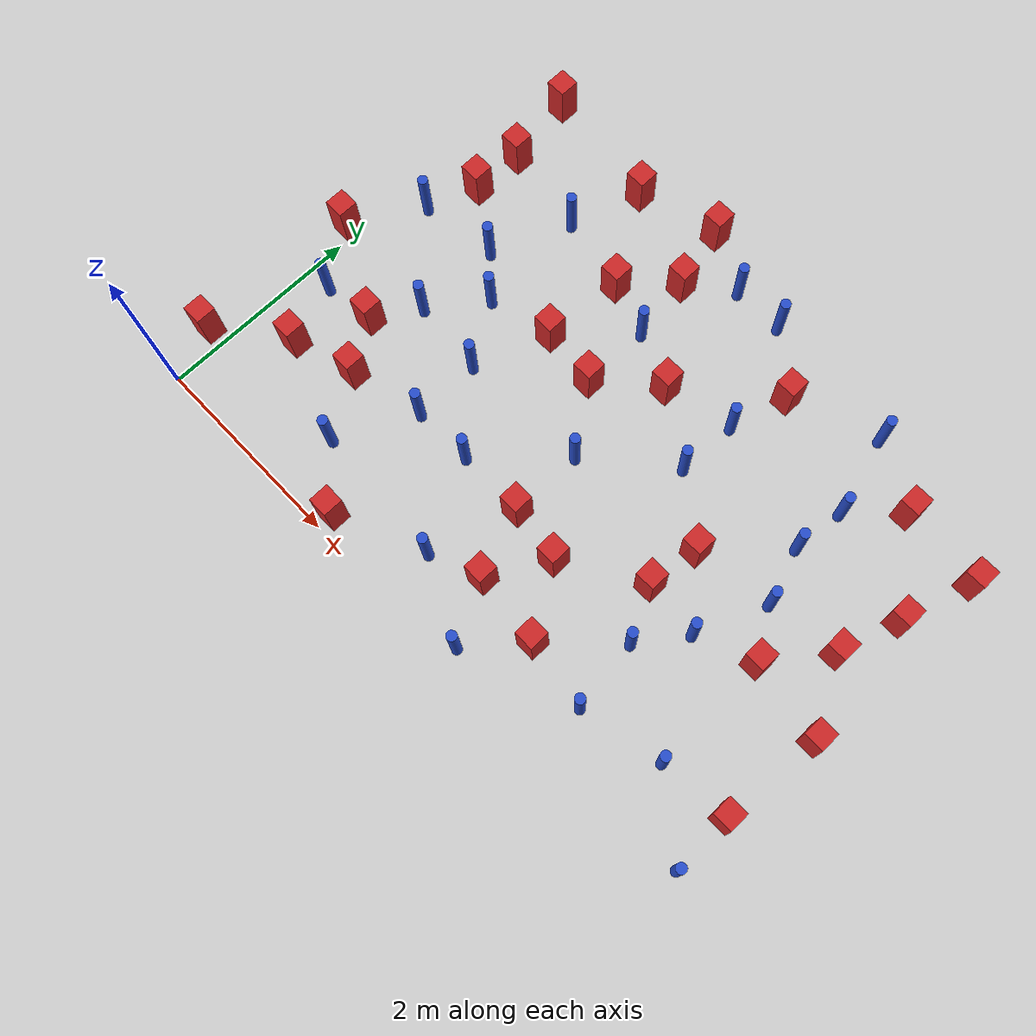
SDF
<sdf version="1.6">
 <model name="dense_57">
  <model name="pole_obstacle1">
   <static>true</static>
   <pose>4.70910394843 1.24014191663 2.88873142074e-08 -9.90536689445e-09 4.60219948999e-07 -1.20965994956e-07</pose>
   <link name="link">
    <pose>0 0 0.3 0 -0 0</pose>
    <inertial>
     <mass>1</mass>
     <inertia><ixx>0.145833</ixx><ixy>0</ixy><ixz>0</ixz><iyy>0.145833</iyy><iyz>0</iyz><izz>0.125</izz></inertia>
    </inertial>
    <collision name="collision">
     <geometry><cylinder><radius>0.05</radius><length>.6</length></cylinder></geometry>
    </collision>
    <visual name="visual">
     <geometry><cylinder><radius>0.05</radius><length>.6</length></cylinder></geometry>
     <material>
      <script><name>Gazebo/Blue</name><uri>file://media/materials/scripts/gazebo.material</uri></script>
     </material>
    </visual>
   </link>
  </model>
  <model name="pole_obstacle4">
   <static>true</static>
   <pose>1.47778483085 2.62779666062 2.88873142074e-08 -9.90536689791e-09 4.6021994899e-07 -1.20965994959e-07</pose>
   <link name="link">
    <pose>0 0 0.3 0 -0 0</pose>
    <inertial>
     <mass>1</mass>
     <inertia><ixx>0.145833</ixx><ixy>0</ixy><ixz>0</ixz><iyy>0.145833</iyy><iyz>0</iyz><izz>0.125</izz></inertia>
    </inertial>
    <collision name="collision">
     <geometry><cylinder><radius>0.05</radius><length>.6</length></cylinder></geometry>
    </collision>
    <visual name="visual">
     <geometry><cylinder><radius>0.05</radius><length>.6</length></cylinder></geometry>
     <material>
      <script><name>Gazebo/Blue</name><uri>file://media/materials/scripts/gazebo.material</uri></script>
     </material>
    </visual>
   </link>
  </model>
  <model name="pole_obstacle7">
   <static>true</static>
   <pose>1.85947096066 1.37539737807 2.88873142074e-08 -9.90536689672e-09 4.60219948993e-07 -1.20965994959e-07</pose>
   <link name="link">
    <pose>0 0 0.3 0 -0 0</pose>
    <inertial>
     <mass>1</mass>
     <inertia><ixx>0.145833</ixx><ixy>0</ixy><ixz>0</ixz><iyy>0.145833</iyy><iyz>0</iyz><izz>0.125</izz></inertia>
    </inertial>
    <collision name="collision">
     <geometry><cylinder><radius>0.05</radius><length>.6</length></cylinder></geometry>
    </collision>
    <visual name="visual">
     <geometry><cylinder><radius>0.05</radius><length>.6</length></cylinder></geometry>
     <material>
      <script><name>Gazebo/Blue</name><uri>file://media/materials/scripts/gazebo.material</uri></script>
     </material>
    </visual>
   </link>
  </model>
  <model name="square_post_obstacle16">
   <static>true</static>
   <pose>0.509750937126 1.03052327592 8.22691968438e-08 7.2212513382e-06 -7.54495500217e-07 2.29674213826e-05</pose>
   <link name="link">
    <pose>0 0 0.25 0 -0 0</pose>
    <inertial>
     <mass>100</mass>
     <inertia>
      <ixx>0.166667</ixx>
      <ixy>0</ixy>
      <ixz>0</ixz>
      <iyy>0.166667</iyy>
      <iyz>0</iyz>
      <izz>0.166667</izz>
     </inertia>
    </inertial>
    <collision name="collision"><geometry><box><size>.2 .2 .5</size></box></geometry></collision>
    <visual name="visual">
     <geometry><box><size>.2 .2 .5</size></box></geometry>
     <material>
      <script><name>Gazebo/Red</name><uri>file://media/materials/scripts/gazebo.material</uri></script>
     </material>
    </visual>
   </link>
  </model>
  <model name="square_post_obstacle20">
   <static>true</static>
   <pose>5.60389424884 3.84199440956 8.22691968438e-08 7.2212513382e-06 -7.54495500217e-07 2.29674213826e-05</pose>
   <link name="link">
    <pose>0 0 0.25 0 -0 0</pose>
    <inertial>
     <mass>100</mass>
     <inertia>
      <ixx>0.166667</ixx>
      <ixy>0</ixy>
      <ixz>0</ixz>
      <iyy>0.166667</iyy>
      <iyz>0</iyz>
      <izz>0.166667</izz>
     </inertia>
    </inertial>
    <collision name="collision"><geometry><box><size>.2 .2 .5</size></box></geometry></collision>
    <visual name="visual">
     <geometry><box><size>.2 .2 .5</size></box></geometry>
     <material>
      <script><name>Gazebo/Red</name><uri>file://media/materials/scripts/gazebo.material</uri></script>
     </material>
    </visual>
   </link>
  </model>
  <model name="pole_obstacle15">
   <static>true</static>
   <pose>1.48284990694 0.625660362326 2.88873142074e-08 -9.90536689692e-09 4.60219948993e-07 -1.20965994958e-07</pose>
   <link name="link">
    <pose>0 0 0.3 0 -0 0</pose>
    <inertial>
     <mass>1</mass>
     <inertia><ixx>0.145833</ixx><ixy>0</ixy><ixz>0</ixz><iyy>0.145833</iyy><iyz>0</iyz><izz>0.125</izz></inertia>
    </inertial>
    <collision name="collision">
     <geometry><cylinder><radius>0.05</radius><length>.6</length></cylinder></geometry>
    </collision>
    <visual name="visual">
     <geometry><cylinder><radius>0.05</radius><length>.6</length></cylinder></geometry>
     <material>
      <script><name>Gazebo/Blue</name><uri>file://media/materials/scripts/gazebo.material</uri></script>
     </material>
    </visual>
   </link>
  </model>
  <model name="square_post_obstacle23">
   <static>true</static>
   <pose>3.39282739825 0.729039512999 8.22691968438e-08 7.2212513382e-06 -7.54495500217e-07 2.29674213826e-05</pose>
   <link name="link">
    <pose>0 0 0.25 0 -0 0</pose>
    <inertial>
     <mass>100</mass>
     <inertia>
      <ixx>0.166667</ixx>
      <ixy>0</ixy>
      <ixz>0</ixz>
      <iyy>0.166667</iyy>
      <iyz>0</iyz>
      <izz>0.166667</izz>
     </inertia>
    </inertial>
    <collision name="collision"><geometry><box><size>.2 .2 .5</size></box></geometry></collision>
    <visual name="visual">
     <geometry><box><size>.2 .2 .5</size></box></geometry>
     <material>
      <script><name>Gazebo/Red</name><uri>file://media/materials/scripts/gazebo.material</uri></script>
     </material>
    </visual>
   </link>
  </model>
  <model name="pole_obstacle18">
   <static>true</static>
   <pose>3.91504674664 2.71842902857 2.88873142074e-08 -9.90536690232e-09 4.6021994898e-07 -1.20965994968e-07</pose>
   <link name="link">
    <pose>0 0 0.3 0 -0 0</pose>
    <inertial>
     <mass>1</mass>
     <inertia><ixx>0.145833</ixx><ixy>0</ixy><ixz>0</ixz><iyy>0.145833</iyy><iyz>0</iyz><izz>0.125</izz></inertia>
    </inertial>
    <collision name="collision">
     <geometry><cylinder><radius>0.05</radius><length>.6</length></cylinder></geometry>
    </collision>
    <visual name="visual">
     <geometry><cylinder><radius>0.05</radius><length>.6</length></cylinder></geometry>
     <material>
      <script><name>Gazebo/Blue</name><uri>file://media/materials/scripts/gazebo.material</uri></script>
     </material>
    </visual>
   </link>
  </model>
  <model name="pole_obstacle29">
   <static>true</static>
   <pose>1.42257281019 3.7378100286 2.88873142074e-08 -9.90536689791e-09 4.6021994899e-07 -1.20965994959e-07</pose>
   <link name="link">
    <pose>0 0 0.3 0 -0 0</pose>
    <inertial>
     <mass>1</mass>
     <inertia><ixx>0.145833</ixx><ixy>0</ixy><ixz>0</ixz><iyy>0.145833</iyy><iyz>0</iyz><izz>0.125</izz></inertia>
    </inertial>
    <collision name="collision">
     <geometry><cylinder><radius>0.05</radius><length>.6</length></cylinder></geometry>
    </collision>
    <visual name="visual">
     <geometry><cylinder><radius>0.05</radius><length>.6</length></cylinder></geometry>
     <material>
      <script><name>Gazebo/Blue</name><uri>file://media/materials/scripts/gazebo.material</uri></script>
     </material>
    </visual>
   </link>
  </model>
  <model name="pole_obstacle44">
   <static>true</static>
   <pose>4.97521513268 4.19667120968 2.88873142074e-08 -9.90536690842e-09 4.60219948965e-07 -1.20965994976e-07</pose>
   <link name="link">
    <pose>0 0 0.3 0 -0 0</pose>
    <inertial>
     <mass>1</mass>
     <inertia><ixx>0.145833</ixx><ixy>0</ixy><ixz>0</ixz><iyy>0.145833</iyy><iyz>0</iyz><izz>0.125</izz></inertia>
    </inertial>
    <collision name="collision">
     <geometry><cylinder><radius>0.05</radius><length>.6</length></cylinder></geometry>
    </collision>
    <visual name="visual">
     <geometry><cylinder><radius>0.05</radius><length>.6</length></cylinder></geometry>
     <material>
      <script><name>Gazebo/Blue</name><uri>file://media/materials/scripts/gazebo.material</uri></script>
     </material>
    </visual>
   </link>
  </model>
  <model name="pole_obstacle50">
   <static>true</static>
   <pose>3.68099340897 0.142534082404 2.88873142074e-08 -9.90536689314e-09 4.60219949002e-07 -1.20965994953e-07</pose>
   <link name="link">
    <pose>0 0 0.3 0 -0 0</pose>
    <inertial>
     <mass>1</mass>
     <inertia><ixx>0.145833</ixx><ixy>0</ixy><ixz>0</ixz><iyy>0.145833</iyy><iyz>0</iyz><izz>0.125</izz></inertia>
    </inertial>
    <collision name="collision">
     <geometry><cylinder><radius>0.05</radius><length>.6</length></cylinder></geometry>
    </collision>
    <visual name="visual">
     <geometry><cylinder><radius>0.05</radius><length>.6</length></cylinder></geometry>
     <material>
      <script><name>Gazebo/Blue</name><uri>file://media/materials/scripts/gazebo.material</uri></script>
     </material>
    </visual>
   </link>
  </model>
  <model name="square_post_obstacle51">
   <static>true</static>
   <pose>0.531060333218 3.87445394791 8.22691968438e-08 7.2212513382e-06 -7.54495500217e-07 2.29674213826e-05</pose>
   <link name="link">
    <pose>0 0 0.25 0 -0 0</pose>
    <inertial>
     <mass>100</mass>
     <inertia>
      <ixx>0.166667</ixx>
      <ixy>0</ixy>
      <ixz>0</ixz>
      <iyy>0.166667</iyy>
      <iyz>0</iyz>
      <izz>0.166667</izz>
     </inertia>
    </inertial>
    <collision name="collision"><geometry><box><size>.2 .2 .5</size></box></geometry></collision>
    <visual name="visual">
     <geometry><box><size>.2 .2 .5</size></box></geometry>
     <material>
      <script><name>Gazebo/Red</name><uri>file://media/materials/scripts/gazebo.material</uri></script>
     </material>
    </visual>
   </link>
  </model>
  <model name="pole_obstacle57">
   <static>true</static>
   <pose>5.18897466718 3.41056651322 2.88873142074e-08 -9.90536690245e-09 4.6021994898e-07 -1.20965994966e-07</pose>
   <link name="link">
    <pose>0 0 0.3 0 -0 0</pose>
    <inertial>
     <mass>1</mass>
     <inertia><ixx>0.145833</ixx><ixy>0</ixy><ixz>0</ixz><iyy>0.145833</iyy><iyz>0</iyz><izz>0.125</izz></inertia>
    </inertial>
    <collision name="collision">
     <geometry><cylinder><radius>0.05</radius><length>.6</length></cylinder></geometry>
    </collision>
    <visual name="visual">
     <geometry><cylinder><radius>0.05</radius><length>.6</length></cylinder></geometry>
     <material>
      <script><name>Gazebo/Blue</name><uri>file://media/materials/scripts/gazebo.material</uri></script>
     </material>
    </visual>
   </link>
  </model>
  <model name="square_post_obstacle62">
   <static>true</static>
   <pose>4.10886648462 0.646720444745 8.22691968438e-08 7.2212513382e-06 -7.54495500217e-07 2.29674213826e-05</pose>
   <link name="link">
    <pose>0 0 0.25 0 -0 0</pose>
    <inertial>
     <mass>100</mass>
     <inertia>
      <ixx>0.166667</ixx>
      <ixy>0</ixy>
      <ixz>0</ixz>
      <iyy>0.166667</iyy>
      <iyz>0</iyz>
      <izz>0.166667</izz>
     </inertia>
    </inertial>
    <collision name="collision"><geometry><box><size>.2 .2 .5</size></box></geometry></collision>
    <visual name="visual">
     <geometry><box><size>.2 .2 .5</size></box></geometry>
     <material>
      <script><name>Gazebo/Red</name><uri>file://media/materials/scripts/gazebo.material</uri></script>
     </material>
    </visual>
   </link>
  </model>
  <model name="square_post_obstacle71">
   <static>true</static>
   <pose>-0.167254333576 0.543579099523 8.22691968438e-08 7.22125133819e-06 -7.54495500217e-07 2.29674213826e-05</pose>
   <link name="link">
    <pose>0 0 0.25 0 -0 0</pose>
    <inertial>
     <mass>100</mass>
     <inertia>
      <ixx>0.166667</ixx>
      <ixy>0</ixy>
      <ixz>0</ixz>
      <iyy>0.166667</iyy>
      <iyz>0</iyz>
      <izz>0.166667</izz>
     </inertia>
    </inertial>
    <collision name="collision"><geometry><box><size>.2 .2 .5</size></box></geometry></collision>
    <visual name="visual">
     <geometry><box><size>.2 .2 .5</size></box></geometry>
     <material>
      <script><name>Gazebo/Red</name><uri>file://media/materials/scripts/gazebo.material</uri></script>
     </material>
    </visual>
   </link>
  </model>
  <model name="pole_obstacle69">
   <static>true</static>
   <pose>3.05030731952 4.3581204059 2.88873142074e-08 -9.90536689859e-09 4.60219948989e-07 -1.20965994961e-07</pose>
   <link name="link">
    <pose>0 0 0.3 0 -0 0</pose>
    <inertial>
     <mass>1</mass>
     <inertia><ixx>0.145833</ixx><ixy>0</ixy><ixz>0</ixz><iyy>0.145833</iyy><iyz>0</iyz><izz>0.125</izz></inertia>
    </inertial>
    <collision name="collision">
     <geometry><cylinder><radius>0.05</radius><length>.6</length></cylinder></geometry>
    </collision>
    <visual name="visual">
     <geometry><cylinder><radius>0.05</radius><length>.6</length></cylinder></geometry>
     <material>
      <script><name>Gazebo/Blue</name><uri>file://media/materials/scripts/gazebo.material</uri></script>
     </material>
    </visual>
   </link>
  </model>
  <model name="pole_obstacle82">
   <static>true</static>
   <pose>2.88810577523 0.532815918404 2.88873142074e-08 -9.90536689404e-09 4.60219949e-07 -1.20965994955e-07</pose>
   <link name="link">
    <pose>0 0 0.3 0 -0 0</pose>
    <inertial>
     <mass>1</mass>
     <inertia><ixx>0.145833</ixx><ixy>0</ixy><ixz>0</ixz><iyy>0.145833</iyy><iyz>0</iyz><izz>0.125</izz></inertia>
    </inertial>
    <collision name="collision">
     <geometry><cylinder><radius>0.05</radius><length>.6</length></cylinder></geometry>
    </collision>
    <visual name="visual">
     <geometry><cylinder><radius>0.05</radius><length>.6</length></cylinder></geometry>
     <material>
      <script><name>Gazebo/Blue</name><uri>file://media/materials/scripts/gazebo.material</uri></script>
     </material>
    </visual>
   </link>
  </model>
  <model name="pole_obstacle83">
   <static>true</static>
   <pose>1.84749083711 2.039909047 2.88873142074e-08 -9.9053669019e-09 4.60219948981e-07 -1.20965994965e-07</pose>
   <link name="link">
    <pose>0 0 0.3 0 -0 0</pose>
    <inertial>
     <mass>1</mass>
     <inertia><ixx>0.145833</ixx><ixy>0</ixy><ixz>0</ixz><iyy>0.145833</iyy><iyz>0</iyz><izz>0.125</izz></inertia>
    </inertial>
    <collision name="collision">
     <geometry><cylinder><radius>0.05</radius><length>.6</length></cylinder></geometry>
    </collision>
    <visual name="visual">
     <geometry><cylinder><radius>0.05</radius><length>.6</length></cylinder></geometry>
     <material>
      <script><name>Gazebo/Blue</name><uri>file://media/materials/scripts/gazebo.material</uri></script>
     </material>
    </visual>
   </link>
  </model>
  <model name="pole_obstacle85">
   <static>true</static>
   <pose>2.46209064445 1.38160981831 2.88873142074e-08 -9.90536689395e-09 4.60219949e-07 -1.20965994953e-07</pose>
   <link name="link">
    <pose>0 0 0.3 0 -0 0</pose>
    <inertial>
     <mass>1</mass>
     <inertia><ixx>0.145833</ixx><ixy>0</ixy><ixz>0</ixz><iyy>0.145833</iyy><iyz>0</iyz><izz>0.125</izz></inertia>
    </inertial>
    <collision name="collision">
     <geometry><cylinder><radius>0.05</radius><length>.6</length></cylinder></geometry>
    </collision>
    <visual name="visual">
     <geometry><cylinder><radius>0.05</radius><length>.6</length></cylinder></geometry>
     <material>
      <script><name>Gazebo/Blue</name><uri>file://media/materials/scripts/gazebo.material</uri></script>
     </material>
    </visual>
   </link>
  </model>
  <model name="pole_obstacle86">
   <static>true</static>
   <pose>4.79495675127 0.54372738592 2.88873142074e-08 -9.90536689326e-09 4.60219949001e-07 -1.20965994954e-07</pose>
   <link name="link">
    <pose>0 0 0.3 0 -0 0</pose>
    <inertial>
     <mass>1</mass>
     <inertia><ixx>0.145833</ixx><ixy>0</ixy><ixz>0</ixz><iyy>0.145833</iyy><iyz>0</iyz><izz>0.125</izz></inertia>
    </inertial>
    <collision name="collision">
     <geometry><cylinder><radius>0.05</radius><length>.6</length></cylinder></geometry>
    </collision>
    <visual name="visual">
     <geometry><cylinder><radius>0.05</radius><length>.6</length></cylinder></geometry>
     <material>
      <script><name>Gazebo/Blue</name><uri>file://media/materials/scripts/gazebo.material</uri></script>
     </material>
    </visual>
   </link>
  </model>
  <model name="pole_obstacle88">
   <static>true</static>
   <pose>3.93982172109 3.31167060398 2.88873142074e-08 -9.90536690232e-09 4.6021994898e-07 -1.20965994968e-07</pose>
   <link name="link">
    <pose>0 0 0.3 0 -0 0</pose>
    <inertial>
     <mass>1</mass>
     <inertia><ixx>0.145833</ixx><ixy>0</ixy><ixz>0</ixz><iyy>0.145833</iyy><iyz>0</iyz><izz>0.125</izz></inertia>
    </inertial>
    <collision name="collision">
     <geometry><cylinder><radius>0.05</radius><length>.6</length></cylinder></geometry>
    </collision>
    <visual name="visual">
     <geometry><cylinder><radius>0.05</radius><length>.6</length></cylinder></geometry>
     <material>
      <script><name>Gazebo/Blue</name><uri>file://media/materials/scripts/gazebo.material</uri></script>
     </material>
    </visual>
   </link>
  </model>
  <model name="pole_obstacle93">
   <static>true</static>
   <pose>5.02648648349 1.67899417795 2.88873142074e-08 -9.90536689445e-09 4.60219948999e-07 -1.20965994956e-07</pose>
   <link name="link">
    <pose>0 0 0.3 0 -0 0</pose>
    <inertial>
     <mass>1</mass>
     <inertia><ixx>0.145833</ixx><ixy>0</ixy><ixz>0</ixz><iyy>0.145833</iyy><iyz>0</iyz><izz>0.125</izz></inertia>
    </inertial>
    <collision name="collision">
     <geometry><cylinder><radius>0.05</radius><length>.6</length></cylinder></geometry>
    </collision>
    <visual name="visual">
     <geometry><cylinder><radius>0.05</radius><length>.6</length></cylinder></geometry>
     <material>
      <script><name>Gazebo/Blue</name><uri>file://media/materials/scripts/gazebo.material</uri></script>
     </material>
    </visual>
   </link>
  </model>
  <model name="square_post_obstacle86">
   <static>true</static>
   <pose>2.70845389974 2.7022897072 8.22691968438e-08 7.2212513382e-06 -7.54495500217e-07 2.29674213826e-05</pose>
   <link name="link">
    <pose>0 0 0.25 0 -0 0</pose>
    <inertial>
     <mass>100</mass>
     <inertia>
      <ixx>0.166667</ixx>
      <ixy>0</ixy>
      <ixz>0</ixz>
      <iyy>0.166667</iyy>
      <iyz>0</iyz>
      <izz>0.166667</izz>
     </inertia>
    </inertial>
    <collision name="collision"><geometry><box><size>.2 .2 .5</size></box></geometry></collision>
    <visual name="visual">
     <geometry><box><size>.2 .2 .5</size></box></geometry>
     <material>
      <script><name>Gazebo/Red</name><uri>file://media/materials/scripts/gazebo.material</uri></script>
     </material>
    </visual>
   </link>
  </model>
  <model name="square_post_obstacle87">
   <static>true</static>
   <pose>1.66176385393 4.43725755081 8.22691968438e-08 7.2212513382e-06 -7.54495500217e-07 2.29674213826e-05</pose>
   <link name="link">
    <pose>0 0 0.25 0 -0 0</pose>
    <inertial>
     <mass>100</mass>
     <inertia>
      <ixx>0.166667</ixx>
      <ixy>0</ixy>
      <ixz>0</ixz>
      <iyy>0.166667</iyy>
      <iyz>0</iyz>
      <izz>0.166667</izz>
     </inertia>
    </inertial>
    <collision name="collision"><geometry><box><size>.2 .2 .5</size></box></geometry></collision>
    <visual name="visual">
     <geometry><box><size>.2 .2 .5</size></box></geometry>
     <material>
      <script><name>Gazebo/Red</name><uri>file://media/materials/scripts/gazebo.material</uri></script>
     </material>
    </visual>
   </link>
  </model>
  <model name="pole_obstacle97">
   <static>true</static>
   <pose>5.13372845619 2.89532559758 2.88873142074e-08 -9.90536690245e-09 4.6021994898e-07 -1.20965994966e-07</pose>
   <link name="link">
    <pose>0 0 0.3 0 -0 0</pose>
    <inertial>
     <mass>1</mass>
     <inertia><ixx>0.145833</ixx><ixy>0</ixy><ixz>0</ixz><iyy>0.145833</iyy><iyz>0</iyz><izz>0.125</izz></inertia>
    </inertial>
    <collision name="collision">
     <geometry><cylinder><radius>0.05</radius><length>.6</length></cylinder></geometry>
    </collision>
    <visual name="visual">
     <geometry><cylinder><radius>0.05</radius><length>.6</length></cylinder></geometry>
     <material>
      <script><name>Gazebo/Blue</name><uri>file://media/materials/scripts/gazebo.material</uri></script>
     </material>
    </visual>
   </link>
  </model>
  <model name="pole_obstacle109">
   <static>true</static>
   <pose>1.09319935428 2.10861999602 2.88873142074e-08 -9.90536689791e-09 4.6021994899e-07 -1.20965994959e-07</pose>
   <link name="link">
    <pose>0 0 0.3 0 -0 0</pose>
    <inertial>
     <mass>1</mass>
     <inertia><ixx>0.145833</ixx><ixy>0</ixy><ixz>0</ixz><iyy>0.145833</iyy><iyz>0</iyz><izz>0.125</izz></inertia>
    </inertial>
    <collision name="collision">
     <geometry><cylinder><radius>0.05</radius><length>.6</length></cylinder></geometry>
    </collision>
    <visual name="visual">
     <geometry><cylinder><radius>0.05</radius><length>.6</length></cylinder></geometry>
     <material>
      <script><name>Gazebo/Blue</name><uri>file://media/materials/scripts/gazebo.material</uri></script>
     </material>
    </visual>
   </link>
  </model>
  <model name="square_post_obstacle100">
   <static>true</static>
   <pose>5.58198037593 1.89903868807 8.22691968438e-08 7.2212513382e-06 -7.54495500217e-07 2.29674213826e-05</pose>
   <link name="link">
    <pose>0 0 0.25 0 -0 0</pose>
    <inertial>
     <mass>100</mass>
     <inertia>
      <ixx>0.166667</ixx>
      <ixy>0</ixy>
      <ixz>0</ixz>
      <iyy>0.166667</iyy>
      <iyz>0</iyz>
      <izz>0.166667</izz>
     </inertia>
    </inertial>
    <collision name="collision"><geometry><box><size>.2 .2 .5</size></box></geometry></collision>
    <visual name="visual">
     <geometry><box><size>.2 .2 .5</size></box></geometry>
     <material>
      <script><name>Gazebo/Red</name><uri>file://media/materials/scripts/gazebo.material</uri></script>
     </material>
    </visual>
   </link>
  </model>
  <model name="square_post_obstacle101">
   <static>true</static>
   <pose>6.4160098529 3.75522987881 8.22691968438e-08 7.2212513382e-06 -7.54495500217e-07 2.29674213826e-05</pose>
   <link name="link">
    <pose>0 0 0.25 0 -0 0</pose>
    <inertial>
     <mass>100</mass>
     <inertia>
      <ixx>0.166667</ixx>
      <ixy>0</ixy>
      <ixz>0</ixz>
      <iyy>0.166667</iyy>
      <iyz>0</iyz>
      <izz>0.166667</izz>
     </inertia>
    </inertial>
    <collision name="collision"><geometry><box><size>.2 .2 .5</size></box></geometry></collision>
    <visual name="visual">
     <geometry><box><size>.2 .2 .5</size></box></geometry>
     <material>
      <script><name>Gazebo/Red</name><uri>file://media/materials/scripts/gazebo.material</uri></script>
     </material>
    </visual>
   </link>
  </model>
  <model name="square_post_obstacle110">
   <static>true</static>
   <pose>3.25560990237 3.15832452246 8.22691968438e-08 7.2212513382e-06 -7.54495500217e-07 2.29674213826e-05</pose>
   <link name="link">
    <pose>0 0 0.25 0 -0 0</pose>
    <inertial>
     <mass>100</mass>
     <inertia>
      <ixx>0.166667</ixx>
      <ixy>0</ixy>
      <ixz>0</ixz>
      <iyy>0.166667</iyy>
      <iyz>0</iyz>
      <izz>0.166667</izz>
     </inertia>
    </inertial>
    <collision name="collision"><geometry><box><size>.2 .2 .5</size></box></geometry></collision>
    <visual name="visual">
     <geometry><box><size>.2 .2 .5</size></box></geometry>
     <material>
      <script><name>Gazebo/Red</name><uri>file://media/materials/scripts/gazebo.material</uri></script>
     </material>
    </visual>
   </link>
  </model>
  <model name="pole_obstacle121">
   <static>true</static>
   <pose>5.60468850741 0.715431302196 2.88873142074e-08 -9.90536689837e-09 4.60219948989e-07 -1.2096599496e-07</pose>
   <link name="link">
    <pose>0 0 0.3 0 -0 0</pose>
    <inertial>
     <mass>1</mass>
     <inertia><ixx>0.145833</ixx><ixy>0</ixy><ixz>0</ixz><iyy>0.145833</iyy><iyz>0</iyz><izz>0.125</izz></inertia>
    </inertial>
    <collision name="collision">
     <geometry><cylinder><radius>0.05</radius><length>.6</length></cylinder></geometry>
    </collision>
    <visual name="visual">
     <geometry><cylinder><radius>0.05</radius><length>.6</length></cylinder></geometry>
     <material>
      <script><name>Gazebo/Blue</name><uri>file://media/materials/scripts/gazebo.material</uri></script>
     </material>
    </visual>
   </link>
  </model>
  <model name="pole_obstacle125">
   <static>true</static>
   <pose>3.1519315099 2.09421471783 2.88873142074e-08 -9.90536690232e-09 4.6021994898e-07 -1.20965994968e-07</pose>
   <link name="link">
    <pose>0 0 0.3 0 -0 0</pose>
    <inertial>
     <mass>1</mass>
     <inertia><ixx>0.145833</ixx><ixy>0</ixy><ixz>0</ixz><iyy>0.145833</iyy><iyz>0</iyz><izz>0.125</izz></inertia>
    </inertial>
    <collision name="collision">
     <geometry><cylinder><radius>0.05</radius><length>.6</length></cylinder></geometry>
    </collision>
    <visual name="visual">
     <geometry><cylinder><radius>0.05</radius><length>.6</length></cylinder></geometry>
     <material>
      <script><name>Gazebo/Blue</name><uri>file://media/materials/scripts/gazebo.material</uri></script>
     </material>
    </visual>
   </link>
  </model>
  <model name="square_post_obstacle115">
   <static>true</static>
   <pose>6.00321309069 2.45282853837 8.22691968438e-08 7.2212513382e-06 -7.54495500217e-07 2.29674213826e-05</pose>
   <link name="link">
    <pose>0 0 0.25 0 -0 0</pose>
    <inertial>
     <mass>100</mass>
     <inertia>
      <ixx>0.166667</ixx>
      <ixy>0</ixy>
      <ixz>0</ixz>
      <iyy>0.166667</iyy>
      <iyz>0</iyz>
      <izz>0.166667</izz>
     </inertia>
    </inertial>
    <collision name="collision"><geometry><box><size>.2 .2 .5</size></box></geometry></collision>
    <visual name="visual">
     <geometry><box><size>.2 .2 .5</size></box></geometry>
     <material>
      <script><name>Gazebo/Red</name><uri>file://media/materials/scripts/gazebo.material</uri></script>
     </material>
    </visual>
   </link>
  </model>
  <model name="square_post_obstacle128">
   <static>true</static>
   <pose>2.47648640576 4.64615010845 8.22691968438e-08 7.2212513382e-06 -7.54495500217e-07 2.29674213826e-05</pose>
   <link name="link">
    <pose>0 0 0.25 0 -0 0</pose>
    <inertial>
     <mass>100</mass>
     <inertia>
      <ixx>0.166667</ixx>
      <ixy>0</ixy>
      <ixz>0</ixz>
      <iyy>0.166667</iyy>
      <iyz>0</iyz>
      <izz>0.166667</izz>
     </inertia>
    </inertial>
    <collision name="collision"><geometry><box><size>.2 .2 .5</size></box></geometry></collision>
    <visual name="visual">
     <geometry><box><size>.2 .2 .5</size></box></geometry>
     <material>
      <script><name>Gazebo/Red</name><uri>file://media/materials/scripts/gazebo.material</uri></script>
     </material>
    </visual>
   </link>
  </model>
  <model name="square_post_obstacle133">
   <static>true</static>
   <pose>2.13171599648 2.77237591949 8.22691968438e-08 7.2212513382e-06 -7.54495500217e-07 2.29674213826e-05</pose>
   <link name="link">
    <pose>0 0 0.25 0 -0 0</pose>
    <inertial>
     <mass>100</mass>
     <inertia>
      <ixx>0.166667</ixx>
      <ixy>0</ixy>
      <ixz>0</ixz>
      <iyy>0.166667</iyy>
      <iyz>0</iyz>
      <izz>0.166667</izz>
     </inertia>
    </inertial>
    <collision name="collision"><geometry><box><size>.2 .2 .5</size></box></geometry></collision>
    <visual name="visual">
     <geometry><box><size>.2 .2 .5</size></box></geometry>
     <material>
      <script><name>Gazebo/Red</name><uri>file://media/materials/scripts/gazebo.material</uri></script>
     </material>
    </visual>
   </link>
  </model>
  <model name="square_post_obstacle142">
   <static>true</static>
   <pose>0.413356632766 4.60096449332 8.22691968438e-08 7.2212513382e-06 -7.54495500217e-07 2.29674213826e-05</pose>
   <link name="link">
    <pose>0 0 0.25 0 -0 0</pose>
    <inertial>
     <mass>100</mass>
     <inertia>
      <ixx>0.166667</ixx>
      <ixy>0</ixy>
      <ixz>0</ixz>
      <iyy>0.166667</iyy>
      <iyz>0</iyz>
      <izz>0.166667</izz>
     </inertia>
    </inertial>
    <collision name="collision"><geometry><box><size>.2 .2 .5</size></box></geometry></collision>
    <visual name="visual">
     <geometry><box><size>.2 .2 .5</size></box></geometry>
     <material>
      <script><name>Gazebo/Red</name><uri>file://media/materials/scripts/gazebo.material</uri></script>
     </material>
    </visual>
   </link>
  </model>
  <model name="square_post_obstacle144">
   <static>true</static>
   <pose>2.62752429421 4.01897842473 8.22691968438e-08 7.22125133819e-06 -7.54495500217e-07 2.29674213826e-05</pose>
   <link name="link">
    <pose>0 0 0.25 0 -0 0</pose>
    <inertial>
     <mass>100</mass>
     <inertia>
      <ixx>0.166667</ixx>
      <ixy>0</ixy>
      <ixz>0</ixz>
      <iyy>0.166667</iyy>
      <iyz>0</iyz>
      <izz>0.166667</izz>
     </inertia>
    </inertial>
    <collision name="collision"><geometry><box><size>.2 .2 .5</size></box></geometry></collision>
    <visual name="visual">
     <geometry><box><size>.2 .2 .5</size></box></geometry>
     <material>
      <script><name>Gazebo/Red</name><uri>file://media/materials/scripts/gazebo.material</uri></script>
     </material>
    </visual>
   </link>
  </model>
  <model name="square_post_obstacle148">
   <static>true</static>
   <pose>2.02430912068 0.173733210992 8.22691968438e-08 7.2212513382e-06 -7.54495500217e-07 2.29674213826e-05</pose>
   <link name="link">
    <pose>0 0 0.25 0 -0 0</pose>
    <inertial>
     <mass>100</mass>
     <inertia>
      <ixx>0.166667</ixx>
      <ixy>0</ixy>
      <ixz>0</ixz>
      <iyy>0.166667</iyy>
      <iyz>0</iyz>
      <izz>0.166667</izz>
     </inertia>
    </inertial>
    <collision name="collision"><geometry><box><size>.2 .2 .5</size></box></geometry></collision>
    <visual name="visual">
     <geometry><box><size>.2 .2 .5</size></box></geometry>
     <material>
      <script><name>Gazebo/Red</name><uri>file://media/materials/scripts/gazebo.material</uri></script>
     </material>
    </visual>
   </link>
  </model>
  <model name="square_post_obstacle150">
   <static>true</static>
   <pose>6.36851767852 1.76621751565 8.22691968438e-08 7.2212513382e-06 -7.54495500217e-07 2.29674213826e-05</pose>
   <link name="link">
    <pose>0 0 0.25 0 -0 0</pose>
    <inertial>
     <mass>100</mass>
     <inertia>
      <ixx>0.166667</ixx>
      <ixy>0</ixy>
      <ixz>0</ixz>
      <iyy>0.166667</iyy>
      <iyz>0</iyz>
      <izz>0.166667</izz>
     </inertia>
    </inertial>
    <collision name="collision"><geometry><box><size>.2 .2 .5</size></box></geometry></collision>
    <visual name="visual">
     <geometry><box><size>.2 .2 .5</size></box></geometry>
     <material>
      <script><name>Gazebo/Red</name><uri>file://media/materials/scripts/gazebo.material</uri></script>
     </material>
    </visual>
   </link>
  </model>
  <model name="square_post_obstacle160">
   <static>true</static>
   <pose>-0.0887474940083 2.18878850441 8.22691968438e-08 7.22125133819e-06 -7.54495500217e-07 2.29674213826e-05</pose>
   <link name="link">
    <pose>0 0 0.25 0 -0 0</pose>
    <inertial>
     <mass>100</mass>
     <inertia>
      <ixx>0.166667</ixx>
      <ixy>0</ixy>
      <ixz>0</ixz>
      <iyy>0.166667</iyy>
      <iyz>0</iyz>
      <izz>0.166667</izz>
     </inertia>
    </inertial>
    <collision name="collision"><geometry><box><size>.2 .2 .5</size></box></geometry></collision>
    <visual name="visual">
     <geometry><box><size>.2 .2 .5</size></box></geometry>
     <material>
      <script><name>Gazebo/Red</name><uri>file://media/materials/scripts/gazebo.material</uri></script>
     </material>
    </visual>
   </link>
  </model>
  <model name="pole_obstacle168">
   <static>true</static>
   <pose>0.303430598897 1.6145533965 2.88873142074e-08 -9.90536689905e-09 4.60219948988e-07 -1.2096599496e-07</pose>
   <link name="link">
    <pose>0 0 0.3 0 -0 0</pose>
    <inertial>
     <mass>1</mass>
     <inertia><ixx>0.145833</ixx><ixy>0</ixy><ixz>0</ixz><iyy>0.145833</iyy><iyz>0</iyz><izz>0.125</izz></inertia>
    </inertial>
    <collision name="collision">
     <geometry><cylinder><radius>0.05</radius><length>.6</length></cylinder></geometry>
    </collision>
    <visual name="visual">
     <geometry><cylinder><radius>0.05</radius><length>.6</length></cylinder></geometry>
     <material>
      <script><name>Gazebo/Blue</name><uri>file://media/materials/scripts/gazebo.material</uri></script>
     </material>
    </visual>
   </link>
  </model>
  <model name="pole_obstacle169">
   <static>true</static>
   <pose>2.70995373998 3.39726237616 2.88873142074e-08 -9.90536690232e-09 4.6021994898e-07 -1.20965994968e-07</pose>
   <link name="link">
    <pose>0 0 0.3 0 -0 0</pose>
    <inertial>
     <mass>1</mass>
     <inertia><ixx>0.145833</ixx><ixy>0</ixy><ixz>0</ixz><iyy>0.145833</iyy><iyz>0</iyz><izz>0.125</izz></inertia>
    </inertial>
    <collision name="collision">
     <geometry><cylinder><radius>0.05</radius><length>.6</length></cylinder></geometry>
    </collision>
    <visual name="visual">
     <geometry><cylinder><radius>0.05</radius><length>.6</length></cylinder></geometry>
     <material>
      <script><name>Gazebo/Blue</name><uri>file://media/materials/scripts/gazebo.material</uri></script>
     </material>
    </visual>
   </link>
  </model>
  <model name="pole_obstacle175">
   <static>true</static>
   <pose>1.0971287201 2.96953172808 2.88873142074e-08 -9.90536689791e-09 4.6021994899e-07 -1.20965994959e-07</pose>
   <link name="link">
    <pose>0 0 0.3 0 -0 0</pose>
    <inertial>
     <mass>1</mass>
     <inertia><ixx>0.145833</ixx><ixy>0</ixy><ixz>0</ixz><iyy>0.145833</iyy><iyz>0</iyz><izz>0.125</izz></inertia>
    </inertial>
    <collision name="collision">
     <geometry><cylinder><radius>0.05</radius><length>.6</length></cylinder></geometry>
    </collision>
    <visual name="visual">
     <geometry><cylinder><radius>0.05</radius><length>.6</length></cylinder></geometry>
     <material>
      <script><name>Gazebo/Blue</name><uri>file://media/materials/scripts/gazebo.material</uri></script>
     </material>
    </visual>
   </link>
  </model>
  <model name="square_post_obstacle165">
   <static>true</static>
   <pose>3.70641250822 1.28781084 8.22691968438e-08 7.2212513382e-06 -7.54495500217e-07 2.29674213826e-05</pose>
   <link name="link">
    <pose>0 0 0.25 0 -0 0</pose>
    <inertial>
     <mass>100</mass>
     <inertia>
      <ixx>0.166667</ixx>
      <ixy>0</ixy>
      <ixz>0</ixz>
      <iyy>0.166667</iyy>
      <iyz>0</iyz>
      <izz>0.166667</izz>
     </inertia>
    </inertial>
    <collision name="collision"><geometry><box><size>.2 .2 .5</size></box></geometry></collision>
    <visual name="visual">
     <geometry><box><size>.2 .2 .5</size></box></geometry>
     <material>
      <script><name>Gazebo/Red</name><uri>file://media/materials/scripts/gazebo.material</uri></script>
     </material>
    </visual>
   </link>
  </model>
  <model name="pole_obstacle178">
   <static>true</static>
   <pose>5.31190927713 2.35344213634 2.88873142074e-08 -9.90536690245e-09 4.6021994898e-07 -1.20965994966e-07</pose>
   <link name="link">
    <pose>0 0 0.3 0 -0 0</pose>
    <inertial>
     <mass>1</mass>
     <inertia><ixx>0.145833</ixx><ixy>0</ixy><ixz>0</ixz><iyy>0.145833</iyy><iyz>0</iyz><izz>0.125</izz></inertia>
    </inertial>
    <collision name="collision">
     <geometry><cylinder><radius>0.05</radius><length>.6</length></cylinder></geometry>
    </collision>
    <visual name="visual">
     <geometry><cylinder><radius>0.05</radius><length>.6</length></cylinder></geometry>
     <material>
      <script><name>Gazebo/Blue</name><uri>file://media/materials/scripts/gazebo.material</uri></script>
     </material>
    </visual>
   </link>
  </model>
  <model name="square_post_obstacle169">
   <static>true</static>
   <pose>4.52607801896 2.24142619134 8.22691968438e-08 7.2212513382e-06 -7.54495500217e-07 2.29674213826e-05</pose>
   <link name="link">
    <pose>0 0 0.25 0 -0 0</pose>
    <inertial>
     <mass>100</mass>
     <inertia>
      <ixx>0.166667</ixx>
      <ixy>0</ixy>
      <ixz>0</ixz>
      <iyy>0.166667</iyy>
      <iyz>0</iyz>
      <izz>0.166667</izz>
     </inertia>
    </inertial>
    <collision name="collision"><geometry><box><size>.2 .2 .5</size></box></geometry></collision>
    <visual name="visual">
     <geometry><box><size>.2 .2 .5</size></box></geometry>
     <material>
      <script><name>Gazebo/Red</name><uri>file://media/materials/scripts/gazebo.material</uri></script>
     </material>
    </visual>
   </link>
  </model>
  <model name="square_post_obstacle185">
   <static>true</static>
   <pose>0.516034162001 3.36219640676 8.22691968438e-08 7.2212513382e-06 -7.54495500217e-07 2.29674213826e-05</pose>
   <link name="link">
    <pose>0 0 0.25 0 -0 0</pose>
    <inertial>
     <mass>100</mass>
     <inertia>
      <ixx>0.166667</ixx>
      <ixy>0</ixy>
      <ixz>0</ixz>
      <iyy>0.166667</iyy>
      <iyz>0</iyz>
      <izz>0.166667</izz>
     </inertia>
    </inertial>
    <collision name="collision"><geometry><box><size>.2 .2 .5</size></box></geometry></collision>
    <visual name="visual">
     <geometry><box><size>.2 .2 .5</size></box></geometry>
     <material>
      <script><name>Gazebo/Red</name><uri>file://media/materials/scripts/gazebo.material</uri></script>
     </material>
    </visual>
   </link>
  </model>
  <model name="square_post_obstacle191">
   <static>true</static>
   <pose>0.826568687405 1.68189443587 8.22691968438e-08 7.2212513382e-06 -7.54495500217e-07 2.29674213826e-05</pose>
   <link name="link">
    <pose>0 0 0.25 0 -0 0</pose>
    <inertial>
     <mass>100</mass>
     <inertia>
      <ixx>0.166667</ixx>
      <ixy>0</ixy>
      <ixz>0</ixz>
      <iyy>0.166667</iyy>
      <iyz>0</iyz>
      <izz>0.166667</izz>
     </inertia>
    </inertial>
    <collision name="collision"><geometry><box><size>.2 .2 .5</size></box></geometry></collision>
    <visual name="visual">
     <geometry><box><size>.2 .2 .5</size></box></geometry>
     <material>
      <script><name>Gazebo/Red</name><uri>file://media/materials/scripts/gazebo.material</uri></script>
     </material>
    </visual>
   </link>
  </model>
  <model name="square_post_obstacle194">
   <static>true</static>
   <pose>3.15325661246 1.37361826493 8.22691968438e-08 7.2212513382e-06 -7.54495500217e-07 2.29674213826e-05</pose>
   <link name="link">
    <pose>0 0 0.25 0 -0 0</pose>
    <inertial>
     <mass>100</mass>
     <inertia>
      <ixx>0.166667</ixx>
      <ixy>0</ixy>
      <ixz>0</ixz>
      <iyy>0.166667</iyy>
      <iyz>0</iyz>
      <izz>0.166667</izz>
     </inertia>
    </inertial>
    <collision name="collision"><geometry><box><size>.2 .2 .5</size></box></geometry></collision>
    <visual name="visual">
     <geometry><box><size>.2 .2 .5</size></box></geometry>
     <material>
      <script><name>Gazebo/Red</name><uri>file://media/materials/scripts/gazebo.material</uri></script>
     </material>
    </visual>
   </link>
  </model>
  <model name="pole_obstacle192">
   <static>true</static>
   <pose>3.56125488435 4.36119049291 2.88873142074e-08 -9.90536689859e-09 4.60219948989e-07 -1.20965994961e-07</pose>
   <link name="link">
    <pose>0 0 0.3 0 -0 0</pose>
    <inertial>
     <mass>1</mass>
     <inertia><ixx>0.145833</ixx><ixy>0</ixy><ixz>0</ixz><iyy>0.145833</iyy><iyz>0</iyz><izz>0.125</izz></inertia>
    </inertial>
    <collision name="collision">
     <geometry><cylinder><radius>0.05</radius><length>.6</length></cylinder></geometry>
    </collision>
    <visual name="visual">
     <geometry><cylinder><radius>0.05</radius><length>.6</length></cylinder></geometry>
     <material>
      <script><name>Gazebo/Blue</name><uri>file://media/materials/scripts/gazebo.material</uri></script>
     </material>
    </visual>
   </link>
  </model>
  <model name="pole_obstacle198">
   <static>true</static>
   <pose>0.315963025718 2.86845633072 2.88873142074e-08 -9.90536689663e-09 4.60219948993e-07 -1.20965994959e-07</pose>
   <link name="link">
    <pose>0 0 0.3 0 -0 0</pose>
    <inertial>
     <mass>1</mass>
     <inertia><ixx>0.145833</ixx><ixy>0</ixy><ixz>0</ixz><iyy>0.145833</iyy><iyz>0</iyz><izz>0.125</izz></inertia>
    </inertial>
    <collision name="collision">
     <geometry><cylinder><radius>0.05</radius><length>.6</length></cylinder></geometry>
    </collision>
    <visual name="visual">
     <geometry><cylinder><radius>0.05</radius><length>.6</length></cylinder></geometry>
     <material>
      <script><name>Gazebo/Blue</name><uri>file://media/materials/scripts/gazebo.material</uri></script>
     </material>
    </visual>
   </link>
  </model>
  <model name="pole_obstacle211">
   <static>true</static>
   <pose>6.29227926913 0.185579086717 2.88873142074e-08 -9.90536689378e-09 4.60219949e-07 -1.20965994955e-07</pose>
   <link name="link">
    <pose>0 0 0.3 0 -0 0</pose>
    <inertial>
     <mass>1</mass>
     <inertia><ixx>0.145833</ixx><ixy>0</ixy><ixz>0</ixz><iyy>0.145833</iyy><iyz>0</iyz><izz>0.125</izz></inertia>
    </inertial>
    <collision name="collision">
     <geometry><cylinder><radius>0.05</radius><length>.6</length></cylinder></geometry>
    </collision>
    <visual name="visual">
     <geometry><cylinder><radius>0.05</radius><length>.6</length></cylinder></geometry>
     <material>
      <script><name>Gazebo/Blue</name><uri>file://media/materials/scripts/gazebo.material</uri></script>
     </material>
    </visual>
   </link>
  </model>
  <model name="square_post_obstacle204">
   <static>true</static>
   <pose>1.13018322408 1.20956993979 8.22691968438e-08 7.2212513382e-06 -7.54495500217e-07 2.29674213826e-05</pose>
   <link name="link">
    <pose>0 0 0.25 0 -0 0</pose>
    <inertial>
     <mass>100</mass>
     <inertia>
      <ixx>0.166667</ixx>
      <ixy>0</ixy>
      <ixz>0</ixz>
      <iyy>0.166667</iyy>
      <iyz>0</iyz>
      <izz>0.166667</izz>
     </inertia>
    </inertial>
    <collision name="collision"><geometry><box><size>.2 .2 .5</size></box></geometry></collision>
    <visual name="visual">
     <geometry><box><size>.2 .2 .5</size></box></geometry>
     <material>
      <script><name>Gazebo/Red</name><uri>file://media/materials/scripts/gazebo.material</uri></script>
     </material>
    </visual>
   </link>
  </model>
  <model name="square_post_obstacle206">
   <static>true</static>
   <pose>2.19339219277 3.57032923973 8.22691968438e-08 7.2212513382e-06 -7.54495500217e-07 2.29674213826e-05</pose>
   <link name="link">
    <pose>0 0 0.25 0 -0 0</pose>
    <inertial>
     <mass>100</mass>
     <inertia>
      <ixx>0.166667</ixx>
      <ixy>0</ixy>
      <ixz>0</ixz>
      <iyy>0.166667</iyy>
      <iyz>0</iyz>
      <izz>0.166667</izz>
     </inertia>
    </inertial>
    <collision name="collision"><geometry><box><size>.2 .2 .5</size></box></geometry></collision>
    <visual name="visual">
     <geometry><box><size>.2 .2 .5</size></box></geometry>
     <material>
      <script><name>Gazebo/Red</name><uri>file://media/materials/scripts/gazebo.material</uri></script>
     </material>
    </visual>
   </link>
  </model>
  <model name="square_post_obstacle214">
   <static>true</static>
   <pose>4.10452059555 3.88535603357 8.22691968438e-08 7.2212513382e-06 -7.54495500217e-07 2.29674213826e-05</pose>
   <link name="link">
    <pose>0 0 0.25 0 -0 0</pose>
    <inertial>
     <mass>100</mass>
     <inertia>
      <ixx>0.166667</ixx>
      <ixy>0</ixy>
      <ixz>0</ixz>
      <iyy>0.166667</iyy>
      <iyz>0</iyz>
      <izz>0.166667</izz>
     </inertia>
    </inertial>
    <collision name="collision"><geometry><box><size>.2 .2 .5</size></box></geometry></collision>
    <visual name="visual">
     <geometry><box><size>.2 .2 .5</size></box></geometry>
     <material>
      <script><name>Gazebo/Red</name><uri>file://media/materials/scripts/gazebo.material</uri></script>
     </material>
    </visual>
   </link>
  </model>
  <model name="square_post_obstacle216">
   <static>true</static>
   <pose>6.19741903152 3.05465178468 8.22691968438e-08 7.2212513382e-06 -7.54495500217e-07 2.29674213826e-05</pose>
   <link name="link">
    <pose>0 0 0.25 0 -0 0</pose>
    <inertial>
     <mass>100</mass>
     <inertia>
      <ixx>0.166667</ixx>
      <ixy>0</ixy>
      <ixz>0</ixz>
      <iyy>0.166667</iyy>
      <iyz>0</iyz>
      <izz>0.166667</izz>
     </inertia>
    </inertial>
    <collision name="collision"><geometry><box><size>.2 .2 .5</size></box></geometry></collision>
    <visual name="visual">
     <geometry><box><size>.2 .2 .5</size></box></geometry>
     <material>
      <script><name>Gazebo/Red</name><uri>file://media/materials/scripts/gazebo.material</uri></script>
     </material>
    </visual>
   </link>
  </model>
  <model name="square_post_obstacle218">
   <static>true</static>
   <pose>4.45920649912 1.73582531739 8.22691968438e-08 7.2212513382e-06 -7.54495500217e-07 2.29674213826e-05</pose>
   <link name="link">
    <pose>0 0 0.25 0 -0 0</pose>
    <inertial>
     <mass>100</mass>
     <inertia>
      <ixx>0.166667</ixx>
      <ixy>0</ixy>
      <ixz>0</ixz>
      <iyy>0.166667</iyy>
      <iyz>0</iyz>
      <izz>0.166667</izz>
     </inertia>
    </inertial>
    <collision name="collision"><geometry><box><size>.2 .2 .5</size></box></geometry></collision>
    <visual name="visual">
     <geometry><box><size>.2 .2 .5</size></box></geometry>
     <material>
      <script><name>Gazebo/Red</name><uri>file://media/materials/scripts/gazebo.material</uri></script>
     </material>
    </visual>
   </link>
  </model>
  <model name="square_post_obstacle219">
   <static>true</static>
   <pose>6.28164546744 0.776749171997 8.22691968438e-08 7.2212513382e-06 -7.54495500217e-07 2.29674213826e-05</pose>
   <link name="link">
    <pose>0 0 0.25 0 -0 0</pose>
    <inertial>
     <mass>100</mass>
     <inertia>
      <ixx>0.166667</ixx>
      <ixy>0</ixy>
      <ixz>0</ixz>
      <iyy>0.166667</iyy>
      <iyz>0</iyz>
      <izz>0.166667</izz>
     </inertia>
    </inertial>
    <collision name="collision"><geometry><box><size>.2 .2 .5</size></box></geometry></collision>
    <visual name="visual">
     <geometry><box><size>.2 .2 .5</size></box></geometry>
     <material>
      <script><name>Gazebo/Red</name><uri>file://media/materials/scripts/gazebo.material</uri></script>
     </material>
    </visual>
   </link>
  </model>
 </model>
</sdf>
